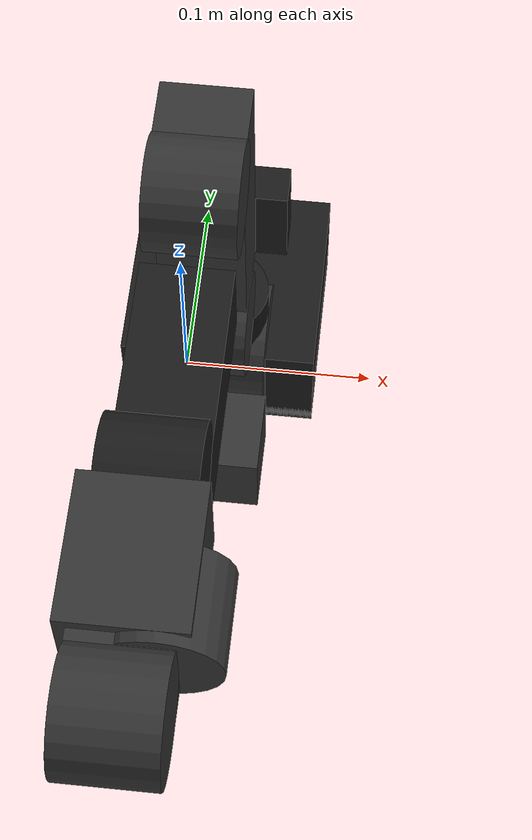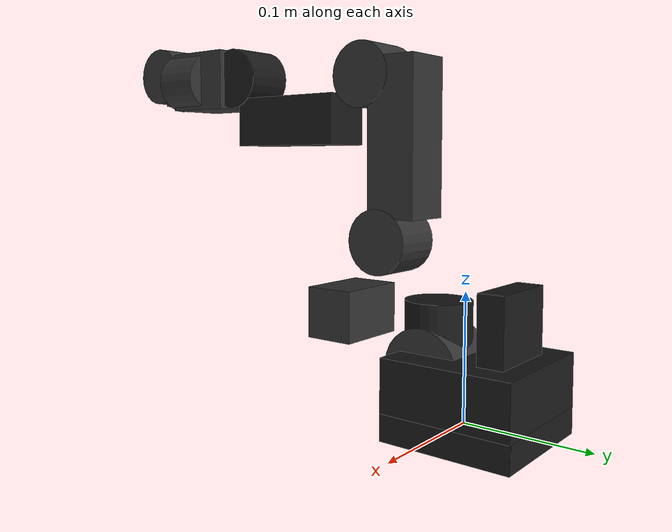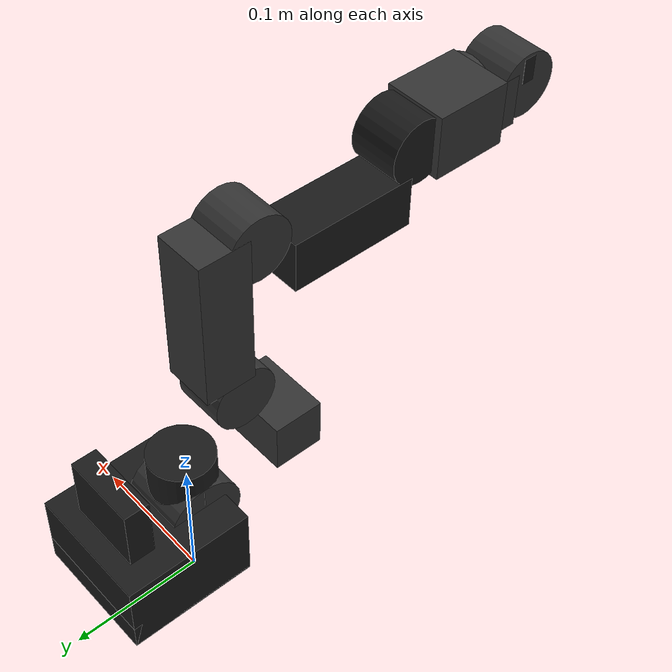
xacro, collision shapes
<?xml version="1.0"?>
<!-- SO-ARM101 Robot Arm URDF.XACRO -->
<robot xmlns:xacro="http://www.ros.org/wiki/xacro" name="so_arm101">

  <!-- XACRO Parameters -->
  <xacro:arg name="controller_config_file" default="$(find so_arm101)/config/controllers_6dof.yaml"/>
  <xacro:property name="controller_config" value="$(arg controller_config_file)"/>

  <!-- ROS2 Control configuration -->
  <ros2_control name="GazeboSimSystem" type="system">
      <hardware>
          <plugin>gz_ros2_control/GazeboSimSystem</plugin>
      </hardware>

      <joint name="base_joint">
          <command_interface name="position">
              <param name="min">-1.92</param>
              <param name="max">1.92</param>
          </command_interface>
          <state_interface name="position"/>
          <state_interface name="velocity"/>
          <state_interface name="effort"/>
      </joint>

      <joint name="shoulder_joint">
          <command_interface name="position">
              <param name="min">-1.75</param>
              <param name="max">1.75</param>
          </command_interface>
          <state_interface name="position"/>
          <state_interface name="velocity"/>
          <state_interface name="effort"/>
      </joint>

      <joint name="elbow_joint">
          <command_interface name="position">
              <param name="min">-1.75</param>
              <param name="max">1.57</param>
          </command_interface>
          <state_interface name="position"/>
          <state_interface name="velocity"/>
          <state_interface name="effort"/>
      </joint>

      <joint name="wrist_pitch_joint">
          <command_interface name="position">
              <param name="min">-1.66</param>
              <param name="max">1.66</param>
          </command_interface>
          <state_interface name="position"/>
          <state_interface name="velocity"/>
          <state_interface name="effort"/>
      </joint>

      <joint name="wrist_roll_joint">
          <command_interface name="position">
              <param name="min">-2.79</param>
              <param name="max">2.79</param>
          </command_interface>
          <state_interface name="position"/>
          <state_interface name="velocity"/>
          <state_interface name="effort"/>
      </joint>

      <joint name="gripper_joint">
          <command_interface name="position">
              <param name="min">-0.175</param>
              <param name="max">1.75</param>
          </command_interface>
          <state_interface name="position"/>
          <state_interface name="velocity"/>
          <state_interface name="effort"/>
      </joint>
  </ros2_control>

  <!-- Ignition Gazebo Plugin -->
  <gazebo>
    <plugin filename="libgz_ros2_control-system.so" name="gz_ros2_control::GazeboSimROS2ControlPlugin">
        <parameters>${controller_config}</parameters>
        <robot_param>robot_description</robot_param>
        <robot_param_node>robot_state_publisher</robot_param_node>
        <control_period>0.01</control_period>
    </plugin>
  </gazebo>

  <!-- Base link -->
  <link name="base_link">
    <gazebo>
      <material>Gazebo/Grey</material>
    </gazebo>
  </link>

  <!-- Fixed joint from base_link to base -->
  <joint name="base_link_joint" type="fixed">
    <parent link="base_link"/>
    <child link="base"/>
    <origin xyz="0 0 0" rpy="0 0 0"/>
  </joint>

  <!-- Base -->
  <link name="base">
    <inertial>
      <origin xyz="0.020739 0.00204287 0.065966" rpy="0 0 0"/>
      <mass value="100.0"/>  <!-- Unrealistic, but essential to keep the arm from tipping over -->
      <inertia ixx="0.136117" ixy="4.59787e-06" ixz="9.75275e-07"
               iyy="0.114686" iyz="-4.97151e-05" izz="0.130364"/>
    </inertial>

    <!-- Add a more stable base collision -->
    <collision name="base_stable_collision">
      <origin xyz="0.0207909 0.0221255 0.010" rpy="0 0 0"/>
      <geometry>
        <box size="0.10 0.10 0.02"/>  <!-- Wider, flatter base for better contact -->
      </geometry>
      <surface>
        <friction>
          <ode>
            <mu>10.0</mu>   <!-- High friction to prevent sliding -->
            <mu2>10.0</mu2>
          </ode>
        </friction>
        <contact>
          <ode>
            <soft_cfm>0.0001</soft_cfm>
            <soft_erp>0.2</soft_erp>
            <kp>1000000</kp>
            <kd>100</kd>
            <max_vel>0.01</max_vel>
            <min_depth>0.001</min_depth>
          </ode>
        </contact>
      </surface>
    </collision>

    <!-- Base motor holder visual -->
    <visual name="base_motor_holder_visual">
      <origin xyz="0.0206915 0.0221255 0.0300817" rpy="1.5708 0 0"/>
      <geometry>
        <mesh filename="package://chess_robot_sim/models/so_arm101/meshes/base_motor_holder_so101_v1.stl"/>
      </geometry>
      <material name="plastic">
        <color rgba="0.1 0.1 0.1 1.0"/>
      </material>
    </visual>

    <collision name="base_motor_holder_collision">
      <origin xyz="0.0206915 0.0221255 0.010" rpy="0 0 0"/>
      <geometry>
        <box size="0.08 0.08 0.02"/>
      </geometry>
      <surface>
        <friction>
          <ode>
            <mu>1.0</mu>
            <mu2>1.0</mu2>
          </ode>
        </friction>
        <contact>
          <ode>
            <soft_cfm>0.0001</soft_cfm>
            <soft_erp>0.2</soft_erp>
            <kp>1000000</kp>
            <kd>100</kd>
            <max_vel>0.01</max_vel>
            <min_depth>0.001</min_depth>
          </ode>
        </contact>
      </surface>
    </collision>

    <!-- Base main body visual -->
    <visual name="base_main_visual">
      <origin xyz="0.0207909 0.0221255 0.0300817" rpy="1.5708 0 0"/>
      <geometry>
        <mesh filename="package://chess_robot_sim/models/so_arm101/meshes/base_so101_v2.stl"/>
      </geometry>
      <material name="plastic">
        <color rgba="0.05 0.05 0.05 1.0"/>
      </material>
    </visual>

    <collision name="base_main_collision">
      <origin xyz="0.0207909 0.0221255 0.030" rpy="0 0 0"/>
      <geometry>
        <box size="0.10 0.10 0.06"/>
      </geometry>
      <surface>
        <friction>
          <ode>
            <mu>1.0</mu>
            <mu2>1.0</mu2>
          </ode>
        </friction>
        <contact>
          <ode>
            <soft_cfm>0.0001</soft_cfm>
            <soft_erp>0.2</soft_erp>
            <kp>1000000</kp>
            <kd>100</kd>
            <max_vel>0.01</max_vel>
            <min_depth>0.001</min_depth>
          </ode>
        </contact>
      </surface>
    </collision>

    <!-- Base motor visual -->
    <visual name="base_motor_visual">
      <origin xyz="0.0207909 -0.0105745 0.0761817" rpy="0 0 -1.5708"/>
      <geometry>
        <mesh filename="package://chess_robot_sim/models/so_arm101/meshes/sts3215_03a_v1.stl"/>
      </geometry>
      <material name="motor">
        <color rgba="0.2 0.2 0.2 1.0"/>
      </material>
    </visual>
    <collision name="base_motor_collision">
      <origin xyz="0.0207909 -0.0105745 0.0761817" rpy="0 0 -1.5708"/>
      <geometry>
        <cylinder radius="0.025" length="0.04"/>
      </geometry>
    </collision>

    <!-- Waveshare mounting plate -->
    <visual name="waveshare_visual">
      <origin xyz="0.0205915 0.0467435 0.0798817" rpy="1.5708 0 0"/>
      <geometry>
        <mesh filename="package://chess_robot_sim/models/so_arm101/meshes/waveshare_mounting_plate_so101_v2.stl"/>
      </geometry>
      <material name="plastic">
        <color rgba="0.7 0.7 0.7 1.0"/>
      </material>
    </visual>
    <collision name="waveshare_collision">
      <origin xyz="0.0205915 0.0467435 0.0798817" rpy="1.5708 0 0"/>
      <geometry>
        <box size="0.06 0.06 0.02"/>
      </geometry>
    </collision>
  </link>

  <!-- Gazebo material for base -->
  <gazebo reference="base">
    <material>Gazebo/White</material>
  </gazebo>

  <!-- Shoulder link -->
  <link name="shoulder">
    <inertial>
      <origin xyz="-0.0307604 -1.66727e-05 -0.0252713" rpy="0 0 0"/>
      <mass value="0.100006"/>
      <inertia ixx="8.3759e-05" ixy="7.55525e-08" ixz="-1.16342e-06"
               iyy="8.10403e-05" iyz="1.54663e-07" izz="2.39783e-05"/>
    </inertial>

    <!-- Shoulder motor -->
    <visual name="shoulder_motor_visual">
      <origin xyz="-0.0303992 0.000422241 -0.0417" rpy="1.5708 1.5708 0"/>
      <geometry>
        <mesh filename="package://chess_robot_sim/models/so_arm101/meshes/sts3215_03a_v1.stl"/>
      </geometry>
      <material name="motor">
        <color rgba="0.2 0.2 0.2 1.0"/>
      </material>
    </visual>
    <collision name="shoulder_motor_collision">
      <origin xyz="-0.0303992 0.000422241 -0.0417" rpy="1.5708 1.5708 0"/>
      <geometry>
        <cylinder radius="0.025" length="0.04"/>
      </geometry>
    </collision>

    <!-- Motor holder base -->
    <visual name="motor_holder_visual">
      <origin xyz="-0.0675992 -0.000177759 0.0158499" rpy="1.5708 -1.5708 0"/>
      <geometry>
        <mesh filename="package://chess_robot_sim/models/so_arm101/meshes/motor_holder_so101_base_v1.stl"/>
      </geometry>
      <material name="plastic">
        <color rgba="0.1 0.1 0.1 1.0"/>
      </material>
    </visual>
    <collision name="motor_holder_collision">
      <origin xyz="-0.0675992 -0.000177759 0.0158499" rpy="1.5708 -1.5708 0"/>
      <geometry>
        <box size="0.04 0.04 0.06"/>
      </geometry>
    </collision>

    <!-- Rotation pitch part -->
    <visual name="rotation_pitch_visual">
      <origin xyz="0.0122008 2.22413e-05 0.0464" rpy="-1.5708 0 0"/>
      <geometry>
        <mesh filename="package://chess_robot_sim/models/so_arm101/meshes/rotation_pitch_so101_v1.stl"/>
      </geometry>
      <material name="plastic">
        <color rgba="0.08 0.08 0.08 1.0"/>
      </material>
    </visual>
    <collision name="rotation_pitch_collision">
      <origin xyz="0.0122008 2.22413e-05 0.0464" rpy="-1.5708 0 0"/>
      <geometry>
        <cylinder radius="0.03" length="0.05"/>
      </geometry>
    </collision>
  </link>

  <!-- Gazebo material for shoulder -->
  <gazebo reference="shoulder">
    <material>Gazebo/Orange</material>
  </gazebo>

  <!-- Base joint (Joint 1) -->
  <joint name="base_joint" type="revolute">
    <origin xyz="0.0207909 -0.0230745 0.0948817" rpy="-3.14159 0 1.5708"/>
    <parent link="base"/>
    <child link="shoulder"/>
    <axis xyz="0 0 1"/>
    <limit effort="10" velocity="3.14" lower="-1.92" upper="1.92"/>
    <dynamics damping="0.1" friction="0.0"/>
  </joint>

  <!-- Upper arm link -->
  <link name="upper_arm">
    <inertial>
      <origin xyz="-0.0898471 -0.00838224 0.0184089" rpy="0 0 0"/>
      <mass value="0.103"/>
      <inertia ixx="4.08002e-05" ixy="-1.97819e-05" ixz="-4.03016e-08"
               iyy="0.000147318" iyz="8.97326e-09" izz="0.000142487"/>
    </inertial>

    <!-- Upper arm motor -->
    <visual name="upper_arm_motor_visual">
      <origin xyz="-0.11257 -0.0155 0.0187" rpy="-3.14159 0 -1.5708"/>
      <geometry>
        <mesh filename="package://chess_robot_sim/models/so_arm101/meshes/sts3215_03a_v1.stl"/>
      </geometry>
      <material name="motor">
        <color rgba="0.2 0.2 0.2 1.0"/>
      </material>
    </visual>
    <collision name="upper_arm_motor_collision">
      <origin xyz="-0.11257 -0.0155 0.0187" rpy="-3.14159 0 -1.5708"/>
      <geometry>
        <cylinder radius="0.025" length="0.04"/>
      </geometry>
    </collision>

    <!-- Upper arm body -->
    <visual name="upper_arm_body_visual">
      <origin xyz="-0.065085 0.012 0.0182" rpy="3.14159 0 0"/>
      <geometry>
        <mesh filename="package://chess_robot_sim/models/so_arm101/meshes/upper_arm_so101_v1.stl"/>
      </geometry>
      <material name="plastic">
        <color rgba="0.1 0.1 0.1 1.0"/>
      </material>
    </visual>
    <collision name="upper_arm_body_collision">
      <origin xyz="-0.065085 0.012 0.0182" rpy="3.14159 0 0"/>
      <geometry>
        <box size="0.12 0.04 0.04"/>
      </geometry>
    </collision>
  </link>

  <!-- Gazebo material for upper_arm -->
  <gazebo reference="upper_arm">
    <material>Gazebo/Blue</material>
  </gazebo>

  <!-- Shoulder joint (Joint 2) -->
  <joint name="shoulder_joint" type="revolute">
    <origin xyz="-0.0303992 -0.0182778 -0.0542" rpy="-1.5708 -1.5708 0"/>
    <parent link="shoulder"/>
    <child link="upper_arm"/>
    <axis xyz="0 0 1"/>
    <limit effort="10" velocity="3.14" lower="-1.75" upper="1.75"/>
    <dynamics damping="0.1" friction="0.0"/>
  </joint>

  <!-- Lower arm link -->
  <link name="lower_arm">
    <inertial>
      <origin xyz="-0.0980701 0.00324376 0.0182831" rpy="0 0 0"/>
      <mass value="0.104"/>
      <inertia ixx="2.87438e-05" ixy="7.41152e-06" ixz="1.26409e-06"
               iyy="0.000159844" iyz="-4.90188e-08" izz="0.00014529"/>
    </inertial>

    <!-- Under arm -->
    <visual name="under_arm_visual">
      <origin xyz="-0.0648499 -0.032 0.0182" rpy="-3.14159 0 0"/>
      <geometry>
        <mesh filename="package://chess_robot_sim/models/so_arm101/meshes/under_arm_so101_v1.stl"/>
      </geometry>
      <material name="plastic">
        <color rgba="0.1 0.1 0.1 1.0"/>
      </material>
    </visual>
    <collision name="under_arm_collision">
      <origin xyz="-0.0648499 -0.032 0.0182" rpy="-3.14159 0 0"/>
      <geometry>
        <box size="0.10 0.04 0.04"/>
      </geometry>
    </collision>

    <!-- Motor holder wrist -->
    <visual name="motor_holder_wrist_visual">
      <origin xyz="-0.0648499 -0.032 0.018" rpy="-3.14159 0 0"/>
      <geometry>
        <mesh filename="package://chess_robot_sim/models/so_arm101/meshes/motor_holder_so101_wrist_v1.stl"/>
      </geometry>
      <material name="plastic">
        <color rgba="0.08 0.08 0.08 1.0"/>
      </material>
    </visual>

    <!-- Lower arm motor -->
    <visual name="lower_arm_motor_visual">
      <origin xyz="-0.1224 0.0052 0.0187" rpy="-3.14159 0 -3.14159"/>
      <geometry>
        <mesh filename="package://chess_robot_sim/models/so_arm101/meshes/sts3215_03a_v1.stl"/>
      </geometry>
      <material name="motor">
        <color rgba="0.2 0.2 0.2 1.0"/>
      </material>
    </visual>
    <collision name="lower_arm_motor_collision">
      <origin xyz="-0.1224 0.0052 0.0187" rpy="-3.14159 0 -3.14159"/>
      <geometry>
        <cylinder radius="0.025" length="0.04"/>
      </geometry>
    </collision>
  </link>

  <!-- Gazebo material for lower_arm -->
  <gazebo reference="lower_arm">
    <material>Gazebo/Green</material>
  </gazebo>

  <!-- Elbow joint (Joint 3) -->
  <joint name="elbow_joint" type="revolute">
    <origin xyz="-0.11257 -0.028 0" rpy="0 0 1.5708"/>
    <parent link="upper_arm"/>
    <child link="lower_arm"/>
    <axis xyz="0 0 1"/>
    <limit effort="10" velocity="3.14" lower="-1.75" upper="1.57"/>
    <dynamics damping="0.1" friction="0.0"/>
  </joint>

  <!-- Wrist link -->
  <link name="wrist">
    <inertial>
      <origin xyz="-0.000103312 -0.0386143 0.0281156" rpy="0 0 0"/>
      <mass value="0.079"/>
      <inertia ixx="3.68263e-05" ixy="1.7893e-08" ixz="-5.28128e-08"
               iyy="2.5391e-05" iyz="3.6412e-06" izz="2.1e-05"/>
    </inertial>

    <!-- Wrist motor (no horn) -->
    <visual name="wrist_motor_visual">
      <origin xyz="0 -0.0424 0.0306" rpy="1.5708 1.5708 0"/>
      <geometry>
        <mesh filename="package://chess_robot_sim/models/so_arm101/meshes/sts3215_03a_no_horn_v1.stl"/>
      </geometry>
      <material name="motor">
        <color rgba="0.2 0.2 0.2 1.0"/>
      </material>
    </visual>
    <collision name="wrist_motor_collision">
      <origin xyz="0 -0.0424 0.0306" rpy="1.5708 1.5708 0"/>
      <geometry>
        <cylinder radius="0.025" length="0.04"/>
      </geometry>
    </collision>

    <!-- Wrist roll pitch -->
    <visual name="wrist_roll_pitch_visual">
      <origin xyz="0 -0.028 0.0181" rpy="-1.5708 -1.5708 0"/>
      <geometry>
        <mesh filename="package://chess_robot_sim/models/so_arm101/meshes/wrist_roll_pitch_so101_v2.stl"/>
      </geometry>
      <material name="plastic">
        <color rgba="0.1 0.1 0.1 1.0"/>
      </material>
    </visual>
    <collision name="wrist_roll_pitch_collision">
      <origin xyz="0 -0.028 0.0181" rpy="-1.5708 -1.5708 0"/>
      <geometry>
        <box size="0.05 0.05 0.06"/>
      </geometry>
    </collision>
  </link>

  <!-- Gazebo material for wrist -->
  <gazebo reference="wrist">
    <material>Gazebo/Yellow</material>
  </gazebo>

  <!-- Wrist pitch joint (Joint 4) -->
  <joint name="wrist_pitch_joint" type="revolute">
    <origin xyz="-0.1349 0.0052 0" rpy="0 0 -1.5708"/>
    <parent link="lower_arm"/>
    <child link="wrist"/>
    <axis xyz="0 0 1"/>
    <limit effort="10" velocity="3.14" lower="-1.66" upper="1.66"/>
    <dynamics damping="0.1" friction="0.0"/>
  </joint>

  <!-- Gripper link -->
  <link name="gripper">
    <inertial>
      <origin xyz="0.000213627 0.000245138 -0.025187" rpy="0 0 0"/>
      <mass value="0.087"/>
      <inertia ixx="2.75087e-05" ixy="-3.35241e-07" ixz="-5.7352e-06"
               iyy="4.33657e-05" iyz="-5.17847e-08" izz="3.45059e-05"/>
    </inertial>

    <!-- Gripper motor -->
    <visual name="gripper_motor_visual">
      <origin xyz="0.0077 0.0001 -0.0234" rpy="-1.5708 0 0"/>
      <geometry>
        <mesh filename="package://chess_robot_sim/models/so_arm101/meshes/sts3215_03a_v1.stl"/>
      </geometry>
      <material name="motor">
        <color rgba="0.2 0.2 0.2 1.0"/>
      </material>
    </visual>
    <collision name="gripper_motor_collision">
      <origin xyz="0.0077 0.0001 -0.0234" rpy="-1.5708 0 0"/>
      <geometry>
        <cylinder radius="0.025" length="0.04"/>
      </geometry>
    </collision>

    <!-- Wrist roll follower -->
    <visual name="wrist_roll_follower_visual">
      <origin xyz="0 -0.000218214 0.000949706" rpy="-3.14159 0 0"/>
      <geometry>
        <mesh filename="package://chess_robot_sim/models/so_arm101/meshes/wrist_roll_follower_so101_v1.stl"/>
      </geometry>
      <material name="plastic">
        <color rgba="0.1 0.1 0.1 1.0"/>
      </material>
    </visual>
    <collision name="wrist_roll_follower_collision">
      <origin xyz="0 -0.000218214 0.000949706" rpy="-3.14159 0 0"/>
      <geometry>
        <box size="0.04 0.04 0.03"/>
      </geometry>
    </collision>
  </link>

  <!-- Gazebo material for gripper -->
  <gazebo reference="gripper">
    <material>Gazebo/Red</material>
  </gazebo>

  <!-- Wrist roll joint (Joint 5) -->
  <joint name="wrist_roll_joint" type="revolute">
    <origin xyz="0 -0.0611 0.0181" rpy="1.5708 0 3.14159"/>
    <parent link="wrist"/>
    <child link="gripper"/>
    <axis xyz="0 0 1"/>
    <limit effort="10" velocity="3.14" lower="-2.79" upper="2.79"/>
    <dynamics damping="0.1" friction="0.0"/>
  </joint>

  <!-- Moving jaw link -->
  <link name="moving_jaw">
    <inertial>
      <origin xyz="-0.00157495 -0.0300244 0.0192755" rpy="0 0 0"/>
      <mass value="0.012"/>
      <inertia ixx="6.61427e-06" ixy="-3.19807e-07" ixz="-5.90717e-09"
               iyy="1.89032e-06" iyz="-1.09945e-07" izz="5.28738e-06"/>
    </inertial>

    <!-- Moving jaw -->
    <visual name="moving_jaw_visual">
      <origin xyz="0 0 0.0189" rpy="0 0 0"/>
      <geometry>
        <mesh filename="package://chess_robot_sim/models/so_arm101/meshes/moving_jaw_so101_v1.stl"/>
      </geometry>
      <material name="plastic">
        <color rgba="0.1 0.1 0.1 1.0"/>
      </material>
    </visual>
    <collision name="moving_jaw_collision">
      <origin xyz="0 0 0.0189" rpy="0 0 0"/>
      <geometry>
        <box size="0.02 0.01 0.04"/>
      </geometry>
    </collision>
  </link>

  <!-- Gazebo material for moving_jaw -->
  <gazebo reference="moving_jaw">
    <material>Gazebo/White</material>
  </gazebo>

  <!-- Gripper joint (Joint 6) -->
  <joint name="gripper_joint" type="revolute">
    <origin xyz="0.0202 0.0188 -0.0234" rpy="1.5708 0 0"/>
    <parent link="gripper"/>
    <child link="moving_jaw"/>
    <axis xyz="0 0 1"/>
    <limit effort="10" velocity="3.14" lower="-0.175" upper="1.75"/>
    <dynamics damping="0.1" friction="0.0"/>
  </joint>

</robot>
